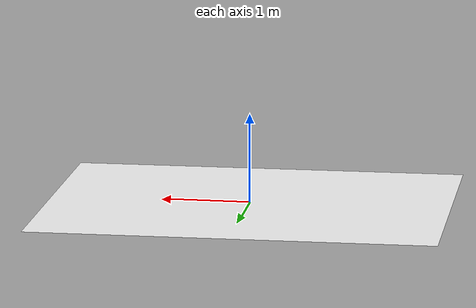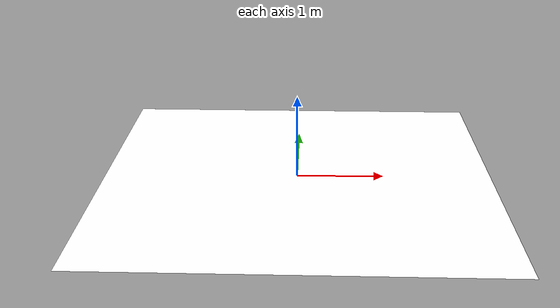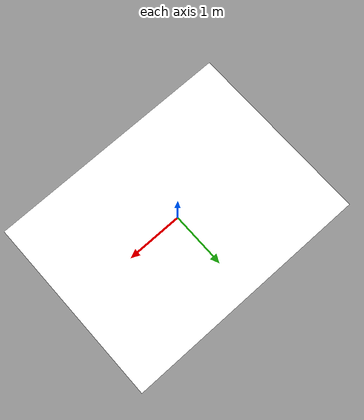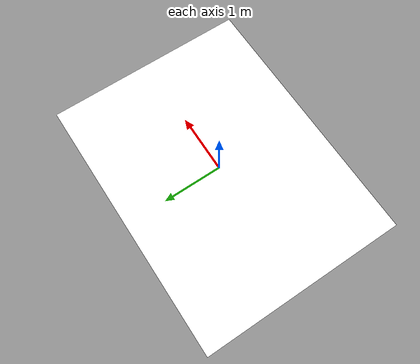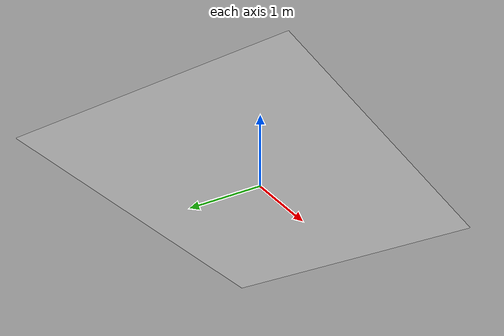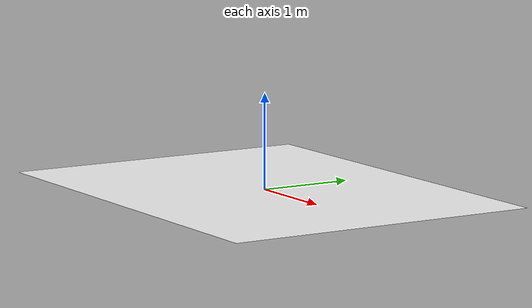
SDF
<?xml version='1.0'?>
<sdf version='1.7'>
  <model name='nxp_logo'>
    <link name='link'>
      <pose>0 0 0 0 -0 0</pose>
      <visual name='visual'>
        <geometry>
          <box>
            <size>4.499197 3.4 0</size>
          </box>
        </geometry>
        <material>
        <diffuse>1.0 1.0 1.0</diffuse>
          <specular>1.0 1.0 1.0</specular>
          <pbr>
          <metal>
          <albedo_map>materials/textures/nxp_logo.PNG</albedo_map>
          <emissive_map>materials/textures/nxp_logo.PNG</emissive_map>
          </metal>
          </pbr>
          <shader type='pixel'/>
        </material>
        <pose>0 0 0 0 -0 0</pose>
        <transparency>0 </transparency>
        <cast_shadows>1</cast_shadows>
      </visual>
    </link>
    <static>1</static>
  </model>
</sdf>
